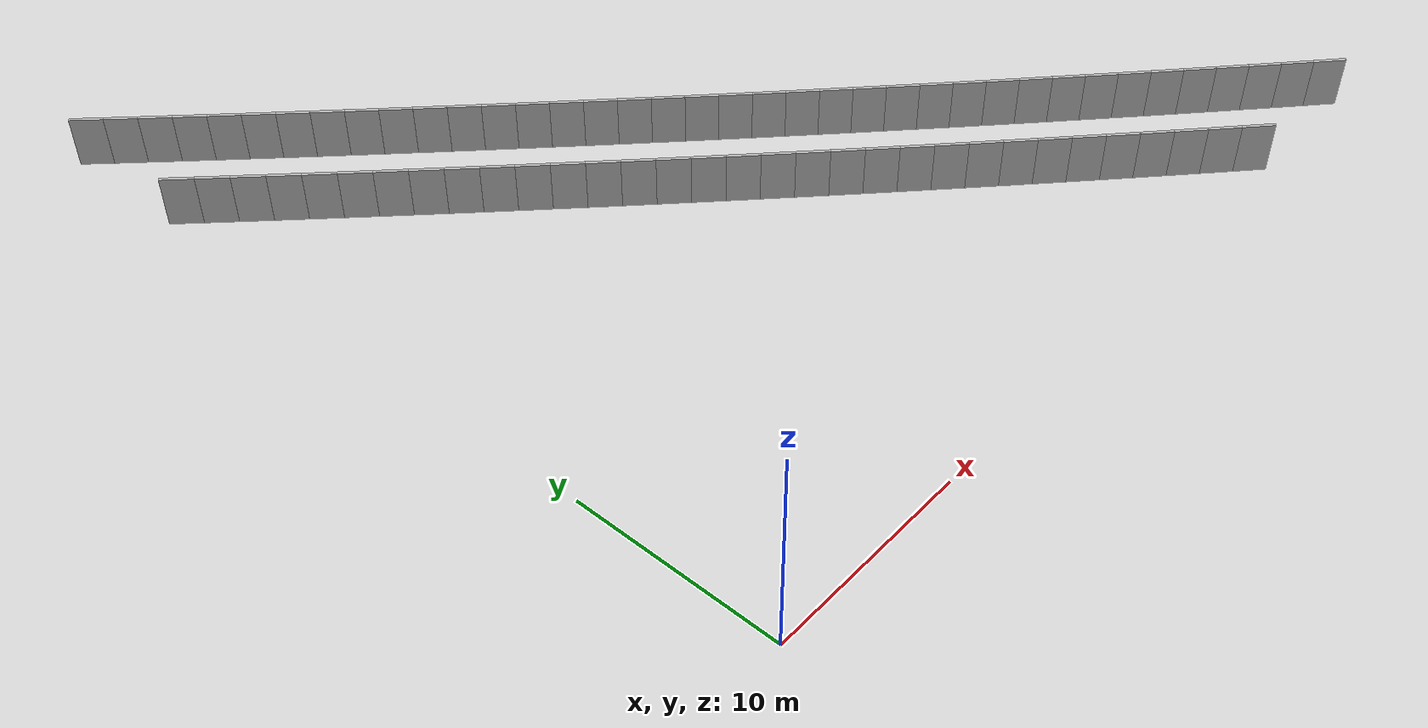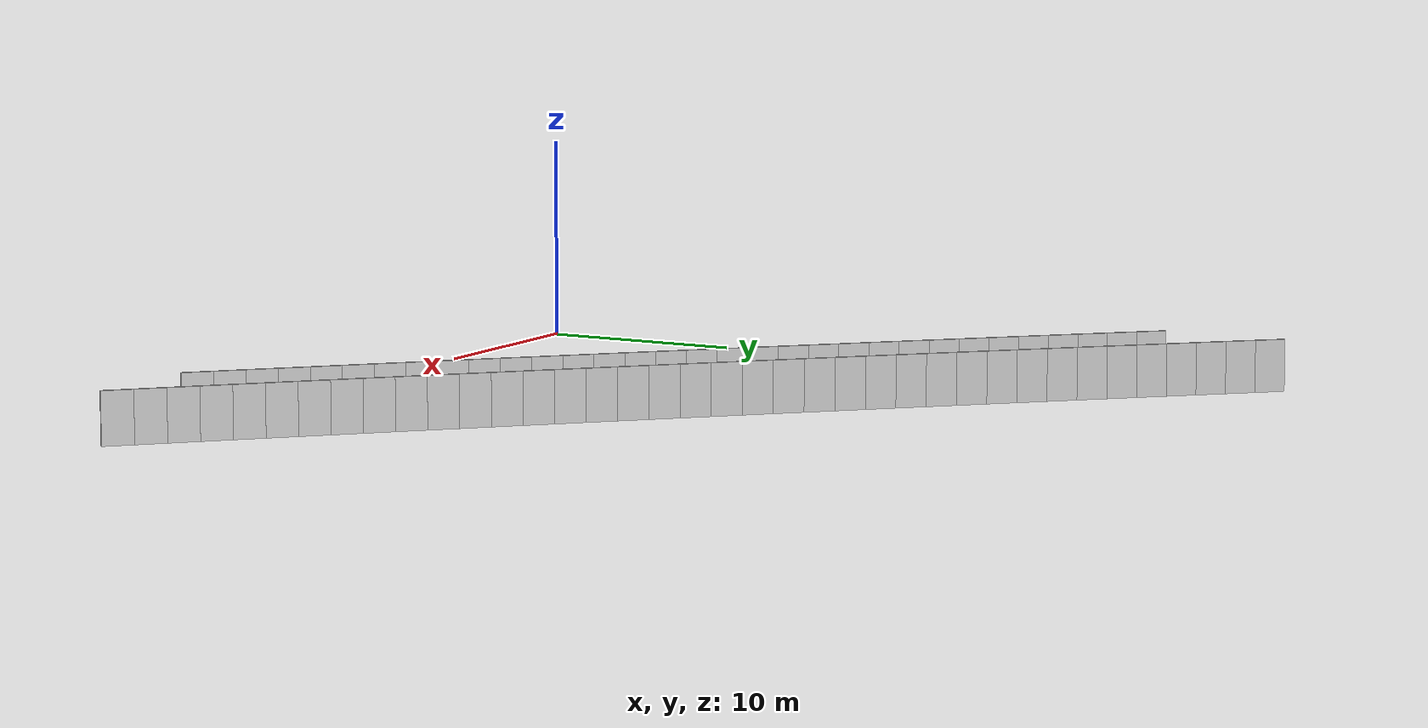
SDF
<?xml version="1.0" ?>
<sdf version="1.6">
  <model name="sps_0909">
    <pose frame="">0 0 0 0 -0 0</pose>
    <static>1</static>
    <self_collide>0</self_collide>
    <allow_auto_disable>0</allow_auto_disable>
    <link name="Wall8501">
      <kinematic>0</kinematic>
      <gravity>1</gravity>
      <self_collide>0</self_collide>
      <collision name="collision">
        <geometry>
          <box>
            <size>1.49904 0.15 2.5</size>
          </box>
        </geometry>
        <pose frame="">0 0 0 0 -0 0</pose>
      </collision>
      <visual name="visual">
        <geometry>
          <box>
            <size>1.49904 0.15 2.5</size>
          </box>
        </geometry>
        <pose frame="">0 0 0 0 -0 0</pose>
        <cast_shadows>1</cast_shadows>
        <transparency>0.0</transparency>
      </visual>
      <pose frame="">0.201469 33.4447 1.25 0 0 -0.803307</pose>
    </link>
    <link name="Wall8502">
      <kinematic>0</kinematic>
      <gravity>1</gravity>
      <self_collide>0</self_collide>
      <collision name="collision">
        <geometry>
          <box>
            <size>1.49896 0.15 2.5</size>
          </box>
        </geometry>
        <pose frame="">0 0 0 0 -0 0</pose>
      </collision>
      <visual name="visual">
        <geometry>
          <box>
            <size>1.49896 0.15 2.5</size>
          </box>
        </geometry>
        <pose frame="">0 0 0 0 -0 0</pose>
        <cast_shadows>1</cast_shadows>
        <transparency>0.0</transparency>
      </visual>
      <pose frame="">1.24306 32.3667 1.25 0 0 -0.801839</pose>
    </link>
    <link name="Wall8503">
      <kinematic>0</kinematic>
      <gravity>1</gravity>
      <self_collide>0</self_collide>
      <collision name="collision">
        <geometry>
          <box>
            <size>1.49879 0.15 2.5</size>
          </box>
        </geometry>
        <pose frame="">0 0 0 0 -0 0</pose>
      </collision>
      <visual name="visual">
        <geometry>
          <box>
            <size>1.49879 0.15 2.5</size>
          </box>
        </geometry>
        <pose frame="">0 0 0 0 -0 0</pose>
        <cast_shadows>1</cast_shadows>
        <transparency>0.0</transparency>
      </visual>
      <pose frame="">2.28634 31.2905 1.25 0 0 -0.800027</pose>
    </link>
    <link name="Wall8504">
      <kinematic>0</kinematic>
      <gravity>1</gravity>
      <self_collide>0</self_collide>
      <collision name="collision">
        <geometry>
          <box>
            <size>1.49893 0.15 2.5</size>
          </box>
        </geometry>
        <pose frame="">0 0 0 0 -0 0</pose>
      </collision>
      <visual name="visual">
        <geometry>
          <box>
            <size>1.49893 0.15 2.5</size>
          </box>
        </geometry>
        <pose frame="">0 0 0 0 -0 0</pose>
        <cast_shadows>1</cast_shadows>
        <transparency>0.0</transparency>
      </visual>
      <pose frame="">3.33135 30.216 1.25 0 0 -0.798586</pose>
    </link>
    <link name="Wall8505">
      <kinematic>0</kinematic>
      <gravity>1</gravity>
      <self_collide>0</self_collide>
      <collision name="collision">
        <geometry>
          <box>
            <size>1.49903 0.15 2.5</size>
          </box>
        </geometry>
        <pose frame="">0 0 0 0 -0 0</pose>
      </collision>
      <visual name="visual">
        <geometry>
          <box>
            <size>1.49903 0.15 2.5</size>
          </box>
        </geometry>
        <pose frame="">0 0 0 0 -0 0</pose>
        <cast_shadows>1</cast_shadows>
        <transparency>0.0</transparency>
      </visual>
      <pose frame="">4.37807 29.143 1.25 0 0 -0.797001</pose>
    </link>
    <link name="Wall8506">
      <kinematic>0</kinematic>
      <gravity>1</gravity>
      <self_collide>0</self_collide>
      <collision name="collision">
        <geometry>
          <box>
            <size>1.49896 0.15 2.5</size>
          </box>
        </geometry>
        <pose frame="">0 0 0 0 -0 0</pose>
      </collision>
      <visual name="visual">
        <geometry>
          <box>
            <size>1.49896 0.15 2.5</size>
          </box>
        </geometry>
        <pose frame="">0 0 0 0 -0 0</pose>
        <cast_shadows>1</cast_shadows>
        <transparency>0.0</transparency>
      </visual>
      <pose frame="">5.42657 28.0717 1.25 0 0 -0.795303</pose>
    </link>
    <link name="Wall8507">
      <kinematic>0</kinematic>
      <gravity>1</gravity>
      <self_collide>0</self_collide>
      <collision name="collision">
        <geometry>
          <box>
            <size>1.49886 0.15 2.5</size>
          </box>
        </geometry>
        <pose frame="">0 0 0 0 -0 0</pose>
      </collision>
      <visual name="visual">
        <geometry>
          <box>
            <size>1.49886 0.15 2.5</size>
          </box>
        </geometry>
        <pose frame="">0 0 0 0 -0 0</pose>
        <cast_shadows>1</cast_shadows>
        <transparency>0.0</transparency>
      </visual>
      <pose frame="">6.47665 27.0021 1.25 0 0 -0.793921</pose>
    </link>
    <link name="Wall8508">
      <kinematic>0</kinematic>
      <gravity>1</gravity>
      <self_collide>0</self_collide>
      <collision name="collision">
        <geometry>
          <box>
            <size>1.49897 0.15 2.5</size>
          </box>
        </geometry>
        <pose frame="">0 0 0 0 -0 0</pose>
      </collision>
      <visual name="visual">
        <geometry>
          <box>
            <size>1.49897 0.15 2.5</size>
          </box>
        </geometry>
        <pose frame="">0 0 0 0 -0 0</pose>
        <cast_shadows>1</cast_shadows>
        <transparency>0.0</transparency>
      </visual>
      <pose frame="">7.52834 25.9341 1.25 0 0 -0.79228</pose>
    </link>
    <link name="Wall8509">
      <kinematic>0</kinematic>
      <gravity>1</gravity>
      <self_collide>0</self_collide>
      <collision name="collision">
        <geometry>
          <box>
            <size>1.49904 0.15 2.5</size>
          </box>
        </geometry>
        <pose frame="">0 0 0 0 -0 0</pose>
      </collision>
      <visual name="visual">
        <geometry>
          <box>
            <size>1.49904 0.15 2.5</size>
          </box>
        </geometry>
        <pose frame="">0 0 0 0 -0 0</pose>
        <cast_shadows>1</cast_shadows>
        <transparency>0.0</transparency>
      </visual>
      <pose frame="">8.58184 24.8677 1.25 0 0 -0.790667</pose>
    </link>
    <link name="Wall8510">
      <kinematic>0</kinematic>
      <gravity>1</gravity>
      <self_collide>0</self_collide>
      <collision name="collision">
        <geometry>
          <box>
            <size>1.49899 0.15 2.5</size>
          </box>
        </geometry>
        <pose frame="">0 0 0 0 -0 0</pose>
      </collision>
      <visual name="visual">
        <geometry>
          <box>
            <size>1.49899 0.15 2.5</size>
          </box>
        </geometry>
        <pose frame="">0 0 0 0 -0 0</pose>
        <cast_shadows>1</cast_shadows>
        <transparency>0.0</transparency>
      </visual>
      <pose frame="">9.63705 23.803 1.25 0 0 -0.789084</pose>
    </link>
    <link name="Wall8511">
      <kinematic>0</kinematic>
      <gravity>1</gravity>
      <self_collide>0</self_collide>
      <collision name="collision">
        <geometry>
          <box>
            <size>1.49894 0.15 2.5</size>
          </box>
        </geometry>
        <pose frame="">0 0 0 0 -0 0</pose>
      </collision>
      <visual name="visual">
        <geometry>
          <box>
            <size>1.49894 0.15 2.5</size>
          </box>
        </geometry>
        <pose frame="">0 0 0 0 -0 0</pose>
        <cast_shadows>1</cast_shadows>
        <transparency>0.0</transparency>
      </visual>
      <pose frame="">10.6939 22.74 1.25 0 0 -0.787558</pose>
    </link>
    <link name="Wall8512">
      <kinematic>0</kinematic>
      <gravity>1</gravity>
      <self_collide>0</self_collide>
      <collision name="collision">
        <geometry>
          <box>
            <size>1.49906 0.15 2.5</size>
          </box>
        </geometry>
        <pose frame="">0 0 0 0 -0 0</pose>
      </collision>
      <visual name="visual">
        <geometry>
          <box>
            <size>1.49906 0.15 2.5</size>
          </box>
        </geometry>
        <pose frame="">0 0 0 0 -0 0</pose>
        <cast_shadows>1</cast_shadows>
        <transparency>0.0</transparency>
      </visual>
      <pose frame="">11.7524 21.6786 1.25 0 0 -0.785974</pose>
    </link>
    <link name="Wall8513">
      <kinematic>0</kinematic>
      <gravity>1</gravity>
      <self_collide>0</self_collide>
      <collision name="collision">
        <geometry>
          <box>
            <size>1.49876 0.15 2.5</size>
          </box>
        </geometry>
        <pose frame="">0 0 0 0 -0 0</pose>
      </collision>
      <visual name="visual">
        <geometry>
          <box>
            <size>1.49876 0.15 2.5</size>
          </box>
        </geometry>
        <pose frame="">0 0 0 0 -0 0</pose>
        <cast_shadows>1</cast_shadows>
        <transparency>0.0</transparency>
      </visual>
      <pose frame="">12.8126 20.619 1.25 0 0 -0.784275</pose>
    </link>
    <link name="Wall8514">
      <kinematic>0</kinematic>
      <gravity>1</gravity>
      <self_collide>0</self_collide>
      <collision name="collision">
        <geometry>
          <box>
            <size>1.49894 0.15 2.5</size>
          </box>
        </geometry>
        <pose frame="">0 0 0 0 -0 0</pose>
      </collision>
      <visual name="visual">
        <geometry>
          <box>
            <size>1.49894 0.15 2.5</size>
          </box>
        </geometry>
        <pose frame="">0 0 0 0 -0 0</pose>
        <cast_shadows>1</cast_shadows>
        <transparency>0.0</transparency>
      </visual>
      <pose frame="">13.8744 19.5611 1.25 0 0 -0.782836</pose>
    </link>
    <link name="Wall8515">
      <kinematic>0</kinematic>
      <gravity>1</gravity>
      <self_collide>0</self_collide>
      <collision name="collision">
        <geometry>
          <box>
            <size>1.49895 0.15 2.5</size>
          </box>
        </geometry>
        <pose frame="">0 0 0 0 -0 0</pose>
      </collision>
      <visual name="visual">
        <geometry>
          <box>
            <size>1.49895 0.15 2.5</size>
          </box>
        </geometry>
        <pose frame="">0 0 0 0 -0 0</pose>
        <cast_shadows>1</cast_shadows>
        <transparency>0.0</transparency>
      </visual>
      <pose frame="">14.9379 18.5048 1.25 0 0 -0.781166</pose>
    </link>
    <link name="Wall8516">
      <kinematic>0</kinematic>
      <gravity>1</gravity>
      <self_collide>0</self_collide>
      <collision name="collision">
        <geometry>
          <box>
            <size>1.49892 0.15 2.5</size>
          </box>
        </geometry>
        <pose frame="">0 0 0 0 -0 0</pose>
      </collision>
      <visual name="visual">
        <geometry>
          <box>
            <size>1.49892 0.15 2.5</size>
          </box>
        </geometry>
        <pose frame="">0 0 0 0 -0 0</pose>
        <cast_shadows>1</cast_shadows>
        <transparency>0.0</transparency>
      </visual>
      <pose frame="">16.003 17.4502 1.25 0 0 -0.77964</pose>
    </link>
    <link name="Wall8517">
      <kinematic>0</kinematic>
      <gravity>1</gravity>
      <self_collide>0</self_collide>
      <collision name="collision">
        <geometry>
          <box>
            <size>1.49898 0.15 2.5</size>
          </box>
        </geometry>
        <pose frame="">0 0 0 0 -0 0</pose>
      </collision>
      <visual name="visual">
        <geometry>
          <box>
            <size>1.49898 0.15 2.5</size>
          </box>
        </geometry>
        <pose frame="">0 0 0 0 -0 0</pose>
        <cast_shadows>1</cast_shadows>
        <transparency>0.0</transparency>
      </visual>
      <pose frame="">17.0699 16.3973 1.25 0 0 -0.777941</pose>
    </link>
    <link name="Wall8518">
      <kinematic>0</kinematic>
      <gravity>1</gravity>
      <self_collide>0</self_collide>
      <collision name="collision">
        <geometry>
          <box>
            <size>1.49899 0.15 2.5</size>
          </box>
        </geometry>
        <pose frame="">0 0 0 0 -0 0</pose>
      </collision>
      <visual name="visual">
        <geometry>
          <box>
            <size>1.49899 0.15 2.5</size>
          </box>
        </geometry>
        <pose frame="">0 0 0 0 -0 0</pose>
        <cast_shadows>1</cast_shadows>
        <transparency>0.0</transparency>
      </visual>
      <pose frame="">18.1385 15.3461 1.25 0 0 -0.776444</pose>
    </link>
    <link name="Wall8519">
      <kinematic>0</kinematic>
      <gravity>1</gravity>
      <self_collide>0</self_collide>
      <collision name="collision">
        <geometry>
          <box>
            <size>1.49884 0.15 2.5</size>
          </box>
        </geometry>
        <pose frame="">0 0 0 0 -0 0</pose>
      </collision>
      <visual name="visual">
        <geometry>
          <box>
            <size>1.49884 0.15 2.5</size>
          </box>
        </geometry>
        <pose frame="">0 0 0 0 -0 0</pose>
        <cast_shadows>1</cast_shadows>
        <transparency>0.0</transparency>
      </visual>
      <pose frame="">19.2086 14.2965 1.25 0 0 -0.775003</pose>
    </link>
    <link name="Wall8520">
      <kinematic>0</kinematic>
      <gravity>1</gravity>
      <self_collide>0</self_collide>
      <collision name="collision">
        <geometry>
          <box>
            <size>1.49904 0.15 2.5</size>
          </box>
        </geometry>
        <pose frame="">0 0 0 0 -0 0</pose>
      </collision>
      <visual name="visual">
        <geometry>
          <box>
            <size>1.49904 0.15 2.5</size>
          </box>
        </geometry>
        <pose frame="">0 0 0 0 -0 0</pose>
        <cast_shadows>1</cast_shadows>
        <transparency>0.0</transparency>
      </visual>
      <pose frame="">20.2804 13.2486 1.25 0 0 -0.773219</pose>
    </link>
    <link name="Wall8521">
      <kinematic>0</kinematic>
      <gravity>1</gravity>
      <self_collide>0</self_collide>
      <collision name="collision">
        <geometry>
          <box>
            <size>1.49881 0.15 2.5</size>
          </box>
        </geometry>
        <pose frame="">0 0 0 0 -0 0</pose>
      </collision>
      <visual name="visual">
        <geometry>
          <box>
            <size>1.49881 0.15 2.5</size>
          </box>
        </geometry>
        <pose frame="">0 0 0 0 -0 0</pose>
        <cast_shadows>1</cast_shadows>
        <transparency>0.0</transparency>
      </visual>
      <pose frame="">21.354 12.2025 1.25 0 0 -0.77172</pose>
    </link>
    <link name="Wall8522">
      <kinematic>0</kinematic>
      <gravity>1</gravity>
      <self_collide>0</self_collide>
      <collision name="collision">
        <geometry>
          <box>
            <size>1.49906 0.15 2.5</size>
          </box>
        </geometry>
        <pose frame="">0 0 0 0 -0 0</pose>
      </collision>
      <visual name="visual">
        <geometry>
          <box>
            <size>1.49906 0.15 2.5</size>
          </box>
        </geometry>
        <pose frame="">0 0 0 0 -0 0</pose>
        <cast_shadows>1</cast_shadows>
        <transparency>0.0</transparency>
      </visual>
      <pose frame="">22.4291 11.158 1.25 0 0 -0.770196</pose>
    </link>
    <link name="Wall8523">
      <kinematic>0</kinematic>
      <gravity>1</gravity>
      <self_collide>0</self_collide>
      <collision name="collision">
        <geometry>
          <box>
            <size>1.49884 0.15 2.5</size>
          </box>
        </geometry>
        <pose frame="">0 0 0 0 -0 0</pose>
      </collision>
      <visual name="visual">
        <geometry>
          <box>
            <size>1.49884 0.15 2.5</size>
          </box>
        </geometry>
        <pose frame="">0 0 0 0 -0 0</pose>
        <cast_shadows>1</cast_shadows>
        <transparency>0.0</transparency>
      </visual>
      <pose frame="">23.5059 10.1152 1.25 0 0 -0.768524</pose>
    </link>
    <link name="Wall8524">
      <kinematic>0</kinematic>
      <gravity>1</gravity>
      <self_collide>0</self_collide>
      <collision name="collision">
        <geometry>
          <box>
            <size>1.49893 0.15 2.5</size>
          </box>
        </geometry>
        <pose frame="">0 0 0 0 -0 0</pose>
      </collision>
      <visual name="visual">
        <geometry>
          <box>
            <size>1.49893 0.15 2.5</size>
          </box>
        </geometry>
        <pose frame="">0 0 0 0 -0 0</pose>
        <cast_shadows>1</cast_shadows>
        <transparency>0.0</transparency>
      </visual>
      <pose frame="">24.5843 9.0742 1.25 0 0 -0.766999</pose>
    </link>
    <link name="Wall8525">
      <kinematic>0</kinematic>
      <gravity>1</gravity>
      <self_collide>0</self_collide>
      <collision name="collision">
        <geometry>
          <box>
            <size>1.49906 0.15 2.5</size>
          </box>
        </geometry>
        <pose frame="">0 0 0 0 -0 0</pose>
      </collision>
      <visual name="visual">
        <geometry>
          <box>
            <size>1.49906 0.15 2.5</size>
          </box>
        </geometry>
        <pose frame="">0 0 0 0 -0 0</pose>
        <cast_shadows>1</cast_shadows>
        <transparency>0.0</transparency>
      </visual>
      <pose frame="">25.6644 8.0348 1.25 0 0 -0.765388</pose>
    </link>
    <link name="Wall8526">
      <kinematic>0</kinematic>
      <gravity>1</gravity>
      <self_collide>0</self_collide>
      <collision name="collision">
        <geometry>
          <box>
            <size>1.49898 0.15 2.5</size>
          </box>
        </geometry>
        <pose frame="">0 0 0 0 -0 0</pose>
      </collision>
      <visual name="visual">
        <geometry>
          <box>
            <size>1.49898 0.15 2.5</size>
          </box>
        </geometry>
        <pose frame="">0 0 0 0 -0 0</pose>
        <cast_shadows>1</cast_shadows>
        <transparency>0.0</transparency>
      </visual>
      <pose frame="">26.7461 6.99712 1.25 0 0 -0.763803</pose>
    </link>
    <link name="Wall8527">
      <kinematic>0</kinematic>
      <gravity>1</gravity>
      <self_collide>0</self_collide>
      <collision name="collision">
        <geometry>
          <box>
            <size>1.49882 0.15 2.5</size>
          </box>
        </geometry>
        <pose frame="">0 0 0 0 -0 0</pose>
      </collision>
      <visual name="visual">
        <geometry>
          <box>
            <size>1.49882 0.15 2.5</size>
          </box>
        </geometry>
        <pose frame="">0 0 0 0 -0 0</pose>
        <cast_shadows>1</cast_shadows>
        <transparency>0.0</transparency>
      </visual>
      <pose frame="">27.8295 5.9612 1.25 0 0 -0.762274</pose>
    </link>
    <link name="Wall8528">
      <kinematic>0</kinematic>
      <gravity>1</gravity>
      <self_collide>0</self_collide>
      <collision name="collision">
        <geometry>
          <box>
            <size>1.49892 0.15 2.5</size>
          </box>
        </geometry>
        <pose frame="">0 0 0 0 -0 0</pose>
      </collision>
      <visual name="visual">
        <geometry>
          <box>
            <size>1.49892 0.15 2.5</size>
          </box>
        </geometry>
        <pose frame="">0 0 0 0 -0 0</pose>
        <cast_shadows>1</cast_shadows>
        <transparency>0.0</transparency>
      </visual>
      <pose frame="">28.9144 4.92699 1.25 0 0 -0.760691</pose>
    </link>
    <link name="Wall8529">
      <kinematic>0</kinematic>
      <gravity>1</gravity>
      <self_collide>0</self_collide>
      <collision name="collision">
        <geometry>
          <box>
            <size>1.49889 0.15 2.5</size>
          </box>
        </geometry>
        <pose frame="">0 0 0 0 -0 0</pose>
      </collision>
      <visual name="visual">
        <geometry>
          <box>
            <size>1.49889 0.15 2.5</size>
          </box>
        </geometry>
        <pose frame="">0 0 0 0 -0 0</pose>
        <cast_shadows>1</cast_shadows>
        <transparency>0.0</transparency>
      </visual>
      <pose frame="">30.0009 3.89448 1.25 0 0 -0.759078</pose>
    </link>
    <link name="Wall8530">
      <kinematic>0</kinematic>
      <gravity>1</gravity>
      <self_collide>0</self_collide>
      <collision name="collision">
        <geometry>
          <box>
            <size>1.49896 0.15 2.5</size>
          </box>
        </geometry>
        <pose frame="">0 0 0 0 -0 0</pose>
      </collision>
      <visual name="visual">
        <geometry>
          <box>
            <size>1.49896 0.15 2.5</size>
          </box>
        </geometry>
        <pose frame="">0 0 0 0 -0 0</pose>
        <cast_shadows>1</cast_shadows>
        <transparency>0.0</transparency>
      </visual>
      <pose frame="">31.0893 2.86378 1.25 0 0 -0.757351</pose>
    </link>
    <link name="Wall8531">
      <kinematic>0</kinematic>
      <gravity>1</gravity>
      <self_collide>0</self_collide>
      <collision name="collision">
        <geometry>
          <box>
            <size>1.49885 0.15 2.5</size>
          </box>
        </geometry>
        <pose frame="">0 0 0 0 -0 0</pose>
      </collision>
      <visual name="visual">
        <geometry>
          <box>
            <size>1.49885 0.15 2.5</size>
          </box>
        </geometry>
        <pose frame="">0 0 0 0 -0 0</pose>
        <cast_shadows>1</cast_shadows>
        <transparency>0.0</transparency>
      </visual>
      <pose frame="">32.1792 1.83479 1.25 0 0 -0.755966</pose>
    </link>
    <link name="Wall8532">
      <kinematic>0</kinematic>
      <gravity>1</gravity>
      <self_collide>0</self_collide>
      <collision name="collision">
        <geometry>
          <box>
            <size>1.49909 0.15 2.5</size>
          </box>
        </geometry>
        <pose frame="">0 0 0 0 -0 0</pose>
      </collision>
      <visual name="visual">
        <geometry>
          <box>
            <size>1.49909 0.15 2.5</size>
          </box>
        </geometry>
        <pose frame="">0 0 0 0 -0 0</pose>
        <cast_shadows>1</cast_shadows>
        <transparency>0.0</transparency>
      </visual>
      <pose frame="">33.2707 0.807387 1.25 0 0 -0.754358</pose>
    </link>
    <link name="Wall9579">
      <kinematic>0</kinematic>
      <gravity>1</gravity>
      <self_collide>0</self_collide>
      <collision name="collision">
        <geometry>
          <box>
            <size>1.49241 0.15 2.5</size>
          </box>
        </geometry>
        <pose frame="">0 0 0 0 -0 0</pose>
      </collision>
      <visual name="visual">
        <geometry>
          <box>
            <size>1.49241 0.15 2.5</size>
          </box>
        </geometry>
        <pose frame="">0 0 0 0 -0 0</pose>
        <cast_shadows>1</cast_shadows>
        <transparency>0.0</transparency>
      </visual>
      <pose frame="">0.0797341 39.549 1.25 0 0 -0.808159</pose>
    </link>
    <link name="Wall9580">
      <kinematic>0</kinematic>
      <gravity>1</gravity>
      <self_collide>0</self_collide>
      <collision name="collision">
        <geometry>
          <box>
            <size>1.49236 0.15 2.5</size>
          </box>
        </geometry>
        <pose frame="">0 0 0 0 -0 0</pose>
      </collision>
      <visual name="visual">
        <geometry>
          <box>
            <size>1.49236 0.15 2.5</size>
          </box>
        </geometry>
        <pose frame="">0 0 0 0 -0 0</pose>
        <cast_shadows>1</cast_shadows>
        <transparency>0.0</transparency>
      </visual>
      <pose frame="">1.11166 38.4709 1.25 0 0 -0.806424</pose>
    </link>
    <link name="Wall9581">
      <kinematic>0</kinematic>
      <gravity>1</gravity>
      <self_collide>0</self_collide>
      <collision name="collision">
        <geometry>
          <box>
            <size>1.49253 0.15 2.5</size>
          </box>
        </geometry>
        <pose frame="">0 0 0 0 -0 0</pose>
      </collision>
      <visual name="visual">
        <geometry>
          <box>
            <size>1.49253 0.15 2.5</size>
          </box>
        </geometry>
        <pose frame="">0 0 0 0 -0 0</pose>
        <cast_shadows>1</cast_shadows>
        <transparency>0.0</transparency>
      </visual>
      <pose frame="">2.14538 37.3944 1.25 0 0 -0.804889</pose>
    </link>
    <link name="Wall9582">
      <kinematic>0</kinematic>
      <gravity>1</gravity>
      <self_collide>0</self_collide>
      <collision name="collision">
        <geometry>
          <box>
            <size>1.4924 0.15 2.5</size>
          </box>
        </geometry>
        <pose frame="">0 0 0 0 -0 0</pose>
      </collision>
      <visual name="visual">
        <geometry>
          <box>
            <size>1.4924 0.15 2.5</size>
          </box>
        </geometry>
        <pose frame="">0 0 0 0 -0 0</pose>
        <cast_shadows>1</cast_shadows>
        <transparency>0.0</transparency>
      </visual>
      <pose frame="">3.18078 36.3195 1.25 0 0 -0.803329</pose>
    </link>
    <link name="Wall9583">
      <kinematic>0</kinematic>
      <gravity>1</gravity>
      <self_collide>0</self_collide>
      <collision name="collision">
        <geometry>
          <box>
            <size>1.49232 0.15 2.5</size>
          </box>
        </geometry>
        <pose frame="">0 0 0 0 -0 0</pose>
      </collision>
      <visual name="visual">
        <geometry>
          <box>
            <size>1.49232 0.15 2.5</size>
          </box>
        </geometry>
        <pose frame="">0 0 0 0 -0 0</pose>
        <cast_shadows>1</cast_shadows>
        <transparency>0.0</transparency>
      </visual>
      <pose frame="">4.21777 35.2463 1.25 0 0 -0.801797</pose>
    </link>
    <link name="Wall9584">
      <kinematic>0</kinematic>
      <gravity>1</gravity>
      <self_collide>0</self_collide>
      <collision name="collision">
        <geometry>
          <box>
            <size>1.49245 0.15 2.5</size>
          </box>
        </geometry>
        <pose frame="">0 0 0 0 -0 0</pose>
      </collision>
      <visual name="visual">
        <geometry>
          <box>
            <size>1.49245 0.15 2.5</size>
          </box>
        </geometry>
        <pose frame="">0 0 0 0 -0 0</pose>
        <cast_shadows>1</cast_shadows>
        <transparency>0.0</transparency>
      </visual>
      <pose frame="">5.25646 34.1747 1.25 0 0 -0.800176</pose>
    </link>
    <link name="Wall9585">
      <kinematic>0</kinematic>
      <gravity>1</gravity>
      <self_collide>0</self_collide>
      <collision name="collision">
        <geometry>
          <box>
            <size>1.49242 0.15 2.5</size>
          </box>
        </geometry>
        <pose frame="">0 0 0 0 -0 0</pose>
      </collision>
      <visual name="visual">
        <geometry>
          <box>
            <size>1.49242 0.15 2.5</size>
          </box>
        </geometry>
        <pose frame="">0 0 0 0 -0 0</pose>
        <cast_shadows>1</cast_shadows>
        <transparency>0.0</transparency>
      </visual>
      <pose frame="">6.29696 33.1048 1.25 0 0 -0.798499</pose>
    </link>
    <link name="Wall9586">
      <kinematic>0</kinematic>
      <gravity>1</gravity>
      <self_collide>0</self_collide>
      <collision name="collision">
        <geometry>
          <box>
            <size>1.49252 0.15 2.5</size>
          </box>
        </geometry>
        <pose frame="">0 0 0 0 -0 0</pose>
      </collision>
      <visual name="visual">
        <geometry>
          <box>
            <size>1.49252 0.15 2.5</size>
          </box>
        </geometry>
        <pose frame="">0 0 0 0 -0 0</pose>
        <cast_shadows>1</cast_shadows>
        <transparency>0.0</transparency>
      </visual>
      <pose frame="">7.33916 32.0365 1.25 0 0 -0.797023</pose>
    </link>
    <link name="Wall9587">
      <kinematic>0</kinematic>
      <gravity>1</gravity>
      <self_collide>0</self_collide>
      <collision name="collision">
        <geometry>
          <box>
            <size>1.49232 0.15 2.5</size>
          </box>
        </geometry>
        <pose frame="">0 0 0 0 -0 0</pose>
      </collision>
      <visual name="visual">
        <geometry>
          <box>
            <size>1.49232 0.15 2.5</size>
          </box>
        </geometry>
        <pose frame="">0 0 0 0 -0 0</pose>
        <cast_shadows>1</cast_shadows>
        <transparency>0.0</transparency>
      </visual>
      <pose frame="">8.38296 30.9698 1.25 0 0 -0.795463</pose>
    </link>
    <link name="Wall9588">
      <kinematic>0</kinematic>
      <gravity>1</gravity>
      <self_collide>0</self_collide>
      <collision name="collision">
        <geometry>
          <box>
            <size>1.49238 0.15 2.5</size>
          </box>
        </geometry>
        <pose frame="">0 0 0 0 -0 0</pose>
      </collision>
      <visual name="visual">
        <geometry>
          <box>
            <size>1.49238 0.15 2.5</size>
          </box>
        </geometry>
        <pose frame="">0 0 0 0 -0 0</pose>
        <cast_shadows>1</cast_shadows>
        <transparency>0.0</transparency>
      </visual>
      <pose frame="">9.42846 29.9049 1.25 0 0 -0.793727</pose>
    </link>
    <link name="Wall9589">
      <kinematic>0</kinematic>
      <gravity>1</gravity>
      <self_collide>0</self_collide>
      <collision name="collision">
        <geometry>
          <box>
            <size>1.49241 0.15 2.5</size>
          </box>
        </geometry>
        <pose frame="">0 0 0 0 -0 0</pose>
      </collision>
      <visual name="visual">
        <geometry>
          <box>
            <size>1.49241 0.15 2.5</size>
          </box>
        </geometry>
        <pose frame="">0 0 0 0 -0 0</pose>
        <cast_shadows>1</cast_shadows>
        <transparency>0.0</transparency>
      </visual>
      <pose frame="">10.4757 28.8416 1.25 0 0 -0.79231</pose>
    </link>
    <link name="Wall9590">
      <kinematic>0</kinematic>
      <gravity>1</gravity>
      <self_collide>0</self_collide>
      <collision name="collision">
        <geometry>
          <box>
            <size>1.49235 0.15 2.5</size>
          </box>
        </geometry>
        <pose frame="">0 0 0 0 -0 0</pose>
      </collision>
      <visual name="visual">
        <geometry>
          <box>
            <size>1.49235 0.15 2.5</size>
          </box>
        </geometry>
        <pose frame="">0 0 0 0 -0 0</pose>
        <cast_shadows>1</cast_shadows>
        <transparency>0.0</transparency>
      </visual>
      <pose frame="">11.5245 27.7799 1.25 0 0 -0.790719</pose>
    </link>
    <link name="Wall9591">
      <kinematic>0</kinematic>
      <gravity>1</gravity>
      <self_collide>0</self_collide>
      <collision name="collision">
        <geometry>
          <box>
            <size>1.49251 0.15 2.5</size>
          </box>
        </geometry>
        <pose frame="">0 0 0 0 -0 0</pose>
      </collision>
      <visual name="visual">
        <geometry>
          <box>
            <size>1.49251 0.15 2.5</size>
          </box>
        </geometry>
        <pose frame="">0 0 0 0 -0 0</pose>
        <cast_shadows>1</cast_shadows>
        <transparency>0.0</transparency>
      </visual>
      <pose frame="">12.5751 26.7199 1.25 0 0 -0.788984</pose>
    </link>
    <link name="Wall9592">
      <kinematic>0</kinematic>
      <gravity>1</gravity>
      <self_collide>0</self_collide>
      <collision name="collision">
        <geometry>
          <box>
            <size>1.49242 0.15 2.5</size>
          </box>
        </geometry>
        <pose frame="">0 0 0 0 -0 0</pose>
      </collision>
      <visual name="visual">
        <geometry>
          <box>
            <size>1.49242 0.15 2.5</size>
          </box>
        </geometry>
        <pose frame="">0 0 0 0 -0 0</pose>
        <cast_shadows>1</cast_shadows>
        <transparency>0.0</transparency>
      </visual>
      <pose frame="">13.6273 25.6615 1.25 0 0 -0.787596</pose>
    </link>
    <link name="Wall9593">
      <kinematic>0</kinematic>
      <gravity>1</gravity>
      <self_collide>0</self_collide>
      <collision name="collision">
        <geometry>
          <box>
            <size>1.49259 0.15 2.5</size>
          </box>
        </geometry>
        <pose frame="">0 0 0 0 -0 0</pose>
      </collision>
      <visual name="visual">
        <geometry>
          <box>
            <size>1.49259 0.15 2.5</size>
          </box>
        </geometry>
        <pose frame="">0 0 0 0 -0 0</pose>
        <cast_shadows>1</cast_shadows>
        <transparency>0.0</transparency>
      </visual>
      <pose frame="">14.6812 24.6047 1.25 0 0 -0.785976</pose>
    </link>
    <link name="Wall9594">
      <kinematic>0</kinematic>
      <gravity>1</gravity>
      <self_collide>0</self_collide>
      <collision name="collision">
        <geometry>
          <box>
            <size>1.49224 0.15 2.5</size>
          </box>
        </geometry>
        <pose frame="">0 0 0 0 -0 0</pose>
      </collision>
      <visual name="visual">
        <geometry>
          <box>
            <size>1.49224 0.15 2.5</size>
          </box>
        </geometry>
        <pose frame="">0 0 0 0 -0 0</pose>
        <cast_shadows>1</cast_shadows>
        <transparency>0.0</transparency>
      </visual>
      <pose frame="">15.7368 23.5497 1.25 0 0 -0.784241</pose>
    </link>
    <link name="Wall9595">
      <kinematic>0</kinematic>
      <gravity>1</gravity>
      <self_collide>0</self_collide>
      <collision name="collision">
        <geometry>
          <box>
            <size>1.49246 0.15 2.5</size>
          </box>
        </geometry>
        <pose frame="">0 0 0 0 -0 0</pose>
      </collision>
      <visual name="visual">
        <geometry>
          <box>
            <size>1.49246 0.15 2.5</size>
          </box>
        </geometry>
        <pose frame="">0 0 0 0 -0 0</pose>
        <cast_shadows>1</cast_shadows>
        <transparency>0.0</transparency>
      </visual>
      <pose frame="">16.7941 22.4964 1.25 0 0 -0.782825</pose>
    </link>
    <link name="Wall9596">
      <kinematic>0</kinematic>
      <gravity>1</gravity>
      <self_collide>0</self_collide>
      <collision name="collision">
        <geometry>
          <box>
            <size>1.4923 0.15 2.5</size>
          </box>
        </geometry>
        <pose frame="">0 0 0 0 -0 0</pose>
      </collision>
      <visual name="visual">
        <geometry>
          <box>
            <size>1.4923 0.15 2.5</size>
          </box>
        </geometry>
        <pose frame="">0 0 0 0 -0 0</pose>
        <cast_shadows>1</cast_shadows>
        <transparency>0.0</transparency>
      </visual>
      <pose frame="">17.8529 21.4447 1.25 0 0 -0.781262</pose>
    </link>
    <link name="Wall9597">
      <kinematic>0</kinematic>
      <gravity>1</gravity>
      <self_collide>0</self_collide>
      <collision name="collision">
        <geometry>
          <box>
            <size>1.49244 0.15 2.5</size>
          </box>
        </geometry>
        <pose frame="">0 0 0 0 -0 0</pose>
      </collision>
      <visual name="visual">
        <geometry>
          <box>
            <size>1.49244 0.15 2.5</size>
          </box>
        </geometry>
        <pose frame="">0 0 0 0 -0 0</pose>
        <cast_shadows>1</cast_shadows>
        <transparency>0.0</transparency>
      </visual>
      <pose frame="">18.9134 20.3947 1.25 0 0 -0.779615</pose>
    </link>
    <link name="Wall9598">
      <kinematic>0</kinematic>
      <gravity>1</gravity>
      <self_collide>0</self_collide>
      <collision name="collision">
        <geometry>
          <box>
            <size>1.49228 0.15 2.5</size>
          </box>
        </geometry>
        <pose frame="">0 0 0 0 -0 0</pose>
      </collision>
      <visual name="visual">
        <geometry>
          <box>
            <size>1.49228 0.15 2.5</size>
          </box>
        </geometry>
        <pose frame="">0 0 0 0 -0 0</pose>
        <cast_shadows>1</cast_shadows>
        <transparency>0.0</transparency>
      </visual>
      <pose frame="">19.9755 19.3464 1.25 0 0 -0.777994</pose>
    </link>
    <link name="Wall9599">
      <kinematic>0</kinematic>
      <gravity>1</gravity>
      <self_collide>0</self_collide>
      <collision name="collision">
        <geometry>
          <box>
            <size>1.49252 0.15 2.5</size>
          </box>
        </geometry>
        <pose frame="">0 0 0 0 -0 0</pose>
      </collision>
      <visual name="visual">
        <geometry>
          <box>
            <size>1.49252 0.15 2.5</size>
          </box>
        </geometry>
        <pose frame="">0 0 0 0 -0 0</pose>
        <cast_shadows>1</cast_shadows>
        <transparency>0.0</transparency>
      </visual>
      <pose frame="">21.0395 18.2998 1.25 0 0 -0.776405</pose>
    </link>
    <link name="Wall9600">
      <kinematic>0</kinematic>
      <gravity>1</gravity>
      <self_collide>0</self_collide>
      <collision name="collision">
        <geometry>
          <box>
            <size>1.49237 0.15 2.5</size>
          </box>
        </geometry>
        <pose frame="">0 0 0 0 -0 0</pose>
      </collision>
      <visual name="visual">
        <geometry>
          <box>
            <size>1.49237 0.15 2.5</size>
          </box>
        </geometry>
        <pose frame="">0 0 0 0 -0 0</pose>
        <cast_shadows>1</cast_shadows>
        <transparency>0.0</transparency>
      </visual>
      <pose frame="">22.105 17.2548 1.25 0 0 -0.774958</pose>
    </link>
    <link name="Wall9601">
      <kinematic>0</kinematic>
      <gravity>1</gravity>
      <self_collide>0</self_collide>
      <collision name="collision">
        <geometry>
          <box>
            <size>1.49235 0.15 2.5</size>
          </box>
        </geometry>
        <pose frame="">0 0 0 0 -0 0</pose>
      </collision>
      <visual name="visual">
        <geometry>
          <box>
            <size>1.49235 0.15 2.5</size>
          </box>
        </geometry>
        <pose frame="">0 0 0 0 -0 0</pose>
        <cast_shadows>1</cast_shadows>
        <transparency>0.0</transparency>
      </visual>
      <pose frame="">23.1721 16.2115 1.25 0 0 -0.773252</pose>
    </link>
    <link name="Wall9602">
      <kinematic>0</kinematic>
      <gravity>1</gravity>
      <self_collide>0</self_collide>
      <collision name="collision">
        <geometry>
          <box>
            <size>1.4923 0.15 2.5</size>
          </box>
        </geometry>
        <pose frame="">0 0 0 0 -0 0</pose>
      </collision>
      <visual name="visual">
        <geometry>
          <box>
            <size>1.4923 0.15 2.5</size>
          </box>
        </geometry>
        <pose frame="">0 0 0 0 -0 0</pose>
        <cast_shadows>1</cast_shadows>
        <transparency>0.0</transparency>
      </visual>
      <pose frame="">24.2409 15.17 1.25 0 0 -0.771689</pose>
    </link>
    <link name="Wall9603">
      <kinematic>0</kinematic>
      <gravity>1</gravity>
      <self_collide>0</self_collide>
      <collision name="collision">
        <geometry>
          <box>
            <size>1.49259 0.15 2.5</size>
          </box>
        </geometry>
        <pose frame="">0 0 0 0 -0 0</pose>
      </collision>
      <visual name="visual">
        <geometry>
          <box>
            <size>1.49259 0.15 2.5</size>
          </box>
        </geometry>
        <pose frame="">0 0 0 0 -0 0</pose>
        <cast_shadows>1</cast_shadows>
        <transparency>0.0</transparency>
      </visual>
      <pose frame="">25.3114 14.1301 1.25 0 0 -0.77013</pose>
    </link>
    <link name="Wall9604">
      <kinematic>0</kinematic>
      <gravity>1</gravity>
      <self_collide>0</self_collide>
      <collision name="collision">
        <geometry>
          <box>
            <size>1.49237 0.15 2.5</size>
          </box>
        </geometry>
        <pose frame="">0 0 0 0 -0 0</pose>
      </collision>
      <visual name="visual">
        <geometry>
          <box>
            <size>1.49237 0.15 2.5</size>
          </box>
        </geometry>
        <pose frame="">0 0 0 0 -0 0</pose>
        <cast_shadows>1</cast_shadows>
        <transparency>0.0</transparency>
      </visual>
      <pose frame="">26.3835 13.0918 1.25 0 0 -0.768624</pose>
    </link>
    <link name="Wall9605">
      <kinematic>0</kinematic>
      <gravity>1</gravity>
      <self_collide>0</self_collide>
      <collision name="collision">
        <geometry>
          <box>
            <size>1.49237 0.15 2.5</size>
          </box>
        </geometry>
        <pose frame="">0 0 0 0 -0 0</pose>
      </collision>
      <visual name="visual">
        <geometry>
          <box>
            <size>1.49237 0.15 2.5</size>
          </box>
        </geometry>
        <pose frame="">0 0 0 0 -0 0</pose>
        <cast_shadows>1</cast_shadows>
        <transparency>0.0</transparency>
      </visual>
      <pose frame="">27.4572 12.0553 1.25 0 0 -0.766918</pose>
    </link>
    <link name="Wall9606">
      <kinematic>0</kinematic>
      <gravity>1</gravity>
      <self_collide>0</self_collide>
      <collision name="collision">
        <geometry>
          <box>
            <size>1.49241 0.15 2.5</size>
          </box>
        </geometry>
        <pose frame="">0 0 0 0 -0 0</pose>
      </collision>
      <visual name="visual">
        <geometry>
          <box>
            <size>1.49241 0.15 2.5</size>
          </box>
        </geometry>
        <pose frame="">0 0 0 0 -0 0</pose>
        <cast_shadows>1</cast_shadows>
        <transparency>0.0</transparency>
      </visual>
      <pose frame="">28.5326 11.0205 1.25 0 0 -0.765414</pose>
    </link>
    <link name="Wall9607">
      <kinematic>0</kinematic>
      <gravity>1</gravity>
      <self_collide>0</self_collide>
      <collision name="collision">
        <geometry>
          <box>
            <size>1.49238 0.15 2.5</size>
          </box>
        </geometry>
        <pose frame="">0 0 0 0 -0 0</pose>
      </collision>
      <visual name="visual">
        <geometry>
          <box>
            <size>1.49238 0.15 2.5</size>
          </box>
        </geometry>
        <pose frame="">0 0 0 0 -0 0</pose>
        <cast_shadows>1</cast_shadows>
        <transparency>0.0</transparency>
      </visual>
      <pose frame="">29.6095 9.98738 1.25 0 0 -0.763794</pose>
    </link>
    <link name="Wall9608">
      <kinematic>0</kinematic>
      <gravity>1</gravity>
      <self_collide>0</self_collide>
      <collision name="collision">
        <geometry>
          <box>
            <size>1.49252 0.15 2.5</size>
          </box>
        </geometry>
        <pose frame="">0 0 0 0 -0 0</pose>
      </collision>
      <visual name="visual">
        <geometry>
          <box>
            <size>1.49252 0.15 2.5</size>
          </box>
        </geometry>
        <pose frame="">0 0 0 0 -0 0</pose>
        <cast_shadows>1</cast_shadows>
        <transparency>0.0</transparency>
      </visual>
      <pose frame="">30.6883 8.95598 1.25 0 0 -0.762176</pose>
    </link>
    <link name="Wall9609">
      <kinematic>0</kinematic>
      <gravity>1</gravity>
      <self_collide>0</self_collide>
      <collision name="collision">
        <geometry>
          <box>
            <size>1.49231 0.15 2.5</size>
          </box>
        </geometry>
        <pose frame="">0 0 0 0 -0 0</pose>
      </collision>
      <visual name="visual">
        <geometry>
          <box>
            <size>1.49231 0.15 2.5</size>
          </box>
        </geometry>
        <pose frame="">0 0 0 0 -0 0</pose>
        <cast_shadows>1</cast_shadows>
        <transparency>0.0</transparency>
      </visual>
      <pose frame="">31.7685 7.92628 1.25 0 0 -0.760669</pose>
    </link>
    <link name="Wall9610">
      <kinematic>0</kinematic>
      <gravity>1</gravity>
      <self_collide>0</self_collide>
      <collision name="collision">
        <geometry>
          <box>
            <size>1.49237 0.15 2.5</size>
          </box>
        </geometry>
        <pose frame="">0 0 0 0 -0 0</pose>
      </collision>
      <visual name="visual">
        <geometry>
          <box>
            <size>1.49237 0.15 2.5</size>
          </box>
        </geometry>
        <pose frame="">0 0 0 0 -0 0</pose>
        <cast_shadows>1</cast_shadows>
        <transparency>0.0</transparency>
      </visual>
      <pose frame="">32.8504 6.8983 1.25 0 0 -0.759107</pose>
    </link>
    <link name="Wall9611">
      <kinematic>0</kinematic>
      <gravity>1</gravity>
      <self_collide>0</self_collide>
      <collision name="collision">
        <geometry>
          <box>
            <size>1.4923 0.15 2.5</size>
          </box>
        </geometry>
        <pose frame="">0 0 0 0 -0 0</pose>
      </collision>
      <visual name="visual">
        <geometry>
          <box>
            <size>1.4923 0.15 2.5</size>
          </box>
        </geometry>
        <pose frame="">0 0 0 0 -0 0</pose>
        <cast_shadows>1</cast_shadows>
        <transparency>0.0</transparency>
      </visual>
      <pose frame="">33.9338 5.87199 1.25 0 0 -0.757573</pose>
    </link>
    <link name="Wall9612">
      <kinematic>0</kinematic>
      <gravity>1</gravity>
      <self_collide>0</self_collide>
      <collision name="collision">
        <geometry>
          <box>
            <size>1.49234 0.15 2.5</size>
          </box>
        </geometry>
        <pose frame="">0 0 0 0 -0 0</pose>
      </collision>
      <visual name="visual">
        <geometry>
          <box>
            <size>1.49234 0.15 2.5</size>
          </box>
        </geometry>
        <pose frame="">0 0 0 0 -0 0</pose>
        <cast_shadows>1</cast_shadows>
        <transparency>0.0</transparency>
      </visual>
      <pose frame="">35.0189 4.84749 1.25 0 0 -0.755809</pose>
    </link>
    <link name="Wall9613">
      <kinematic>0</kinematic>
      <gravity>1</gravity>
      <self_collide>0</self_collide>
      <collision name="collision">
        <geometry>
          <box>
            <size>1.49245 0.15 2.5</size>
          </box>
        </geometry>
        <pose frame="">0 0 0 0 -0 0</pose>
      </collision>
      <visual name="visual">
        <geometry>
          <box>
            <size>1.49245 0.15 2.5</size>
          </box>
        </geometry>
        <pose frame="">0 0 0 0 -0 0</pose>
        <cast_shadows>1</cast_shadows>
        <transparency>0.0</transparency>
      </visual>
      <pose frame="">36.1056 3.82469 1.25 0 0 -0.754335</pose>
    </link>
    <link name="Wall9614">
      <kinematic>0</kinematic>
      <gravity>1</gravity>
      <self_collide>0</self_collide>
      <collision name="collision">
        <geometry>
          <box>
            <size>1.49252 0.15 2.5</size>
          </box>
        </geometry>
        <pose frame="">0 0 0 0 -0 0</pose>
      </collision>
      <visual name="visual">
        <geometry>
          <box>
            <size>1.49252 0.15 2.5</size>
          </box>
        </geometry>
        <pose frame="">0 0 0 0 -0 0</pose>
        <cast_shadows>1</cast_shadows>
        <transparency>0.0</transparency>
      </visual>
      <pose frame="">37.1941 2.80348 1.25 0 0 -0.752775</pose>
    </link>
    <link name="Wall9615">
      <kinematic>0</kinematic>
      <gravity>1</gravity>
      <self_collide>0</self_collide>
      <collision name="collision">
        <geometry>
          <box>
            <size>1.49243 0.15 2.5</size>
          </box>
        </geometry>
        <pose frame="">0 0 0 0 -0 0</pose>
      </collision>
      <visual name="visual">
        <geometry>
          <box>
            <size>1.49243 0.15 2.5</size>
          </box>
        </geometry>
        <pose frame="">0 0 0 0 -0 0</pose>
        <cast_shadows>1</cast_shadows>
        <transparency>0.0</transparency>
      </visual>
      <pose frame="">38.284 1.78398 1.25 0 0 -0.75121</pose>
    </link>
    <link name="Wall9616">
      <kinematic>0</kinematic>
      <gravity>1</gravity>
      <self_collide>0</self_collide>
      <collision name="collision">
        <geometry>
          <box>
            <size>1.49238 0.15 2.5</size>
          </box>
        </geometry>
        <pose frame="">0 0 0 0 -0 0</pose>
      </collision>
      <visual name="visual">
        <geometry>
          <box>
            <size>1.49238 0.15 2.5</size>
          </box>
        </geometry>
        <pose frame="">0 0 0 0 -0 0</pose>
        <cast_shadows>1</cast_shadows>
        <transparency>0.0</transparency>
      </visual>
      <pose frame="">39.3756 0.76628 1.25 0 0 -0.74956</pose>
    </link>
  </model>
</sdf>
